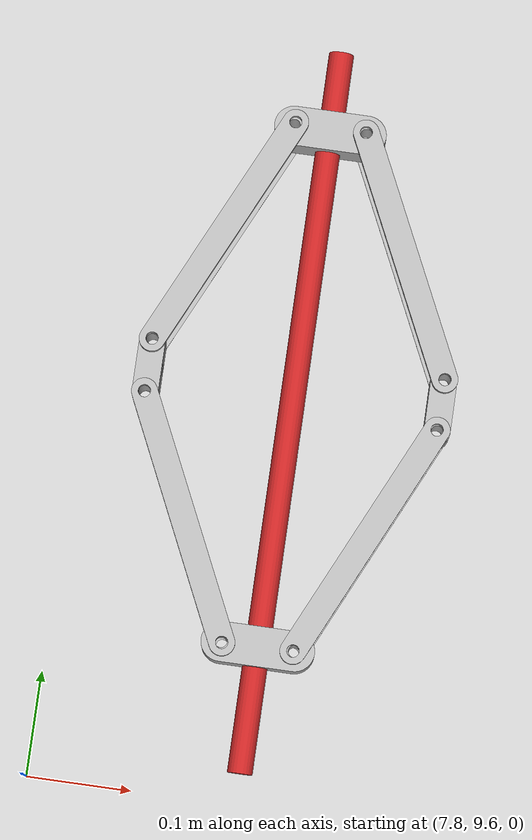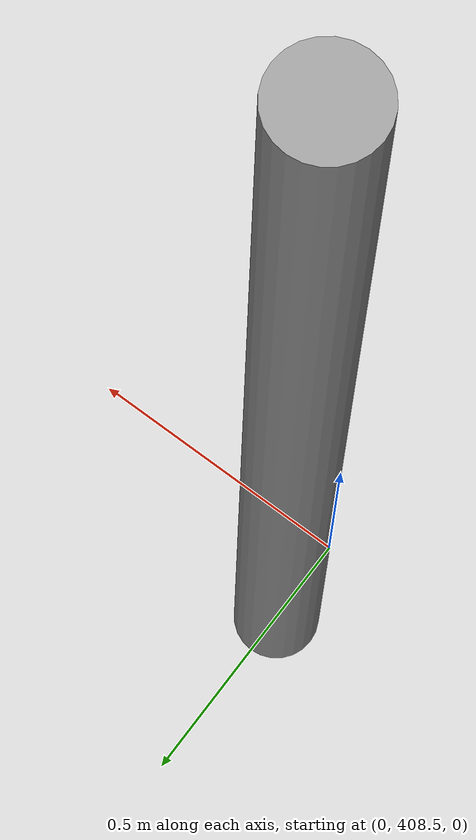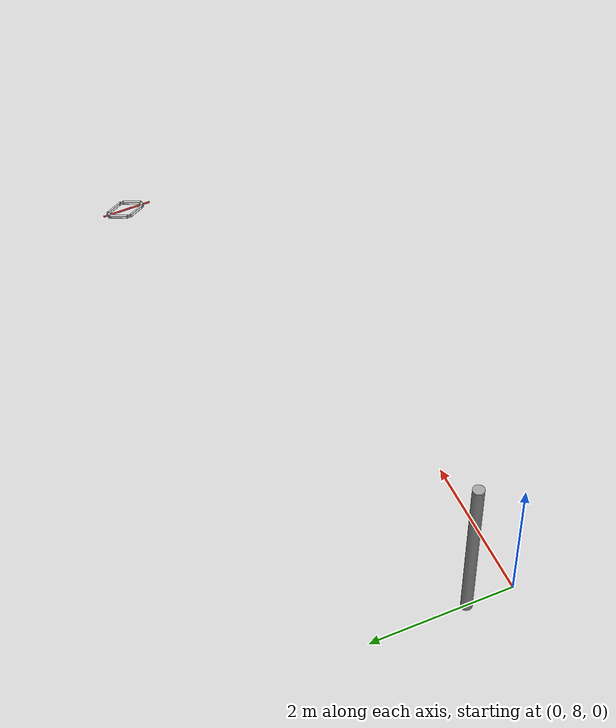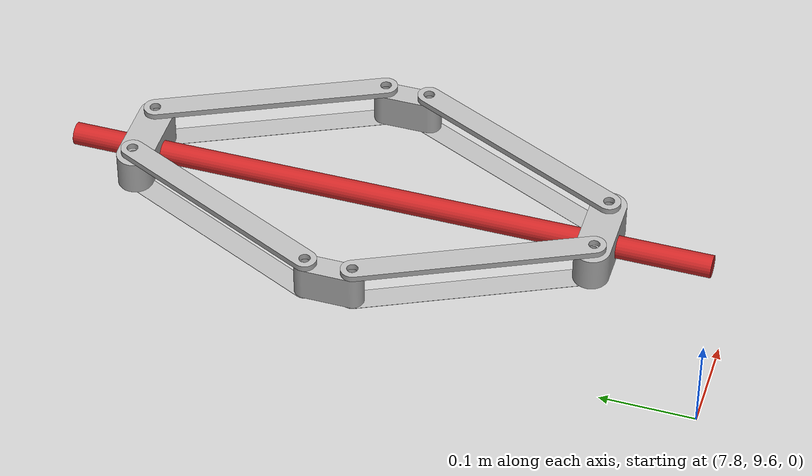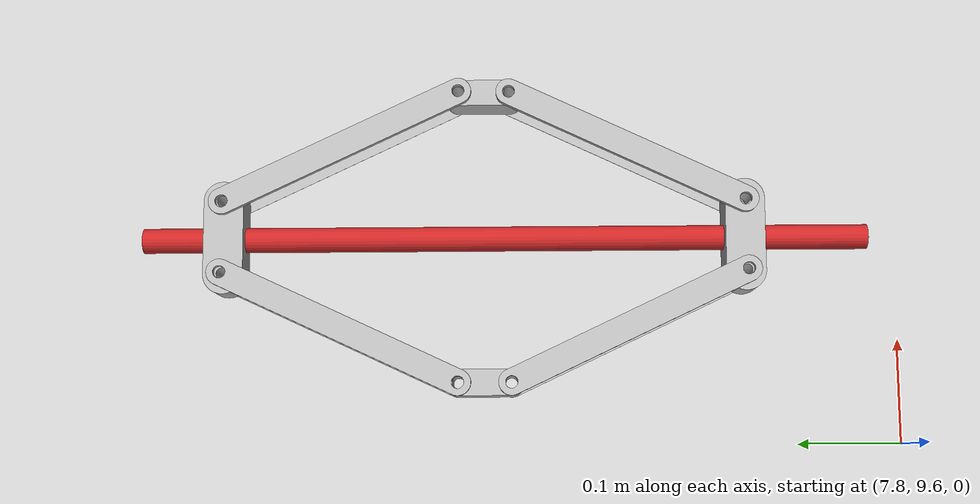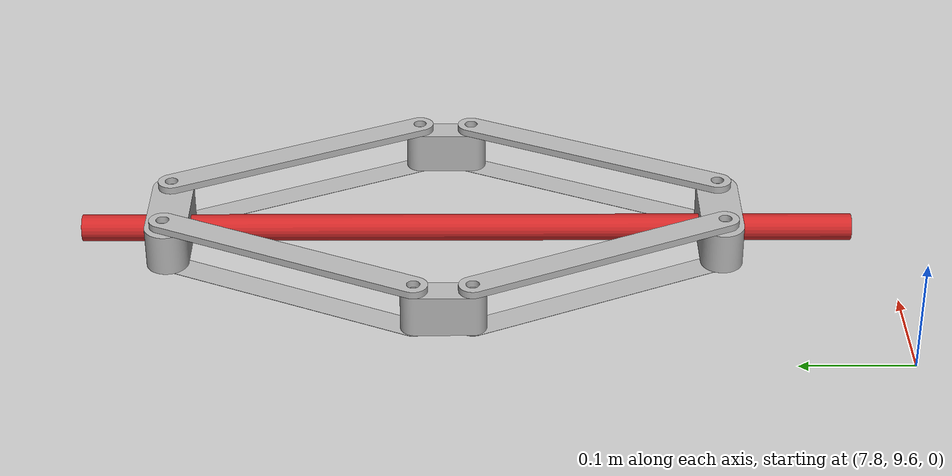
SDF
<sdf version="1.6">
 <world name="static_comm_block">
  <plugin name="ros_interface_plugin" filename="librotors_gazebo_ros_interface_plugin.so"/>
  <gravity>0 0 -9.8</gravity>
  <magnetic_field>6e-06 2.3e-05 -4.2e-05</magnetic_field>
  <atmosphere type="adiabatic"/>
  <physics type="ode">
   <max_step_size>0.001</max_step_size>
   <real_time_factor>1</real_time_factor>
   <real_time_update_rate>1000</real_time_update_rate>
  </physics>
  <scene><ambient>0.4 0.4 0.4 1</ambient><background>0.7 0.7 0.7 1</background><shadows>1</shadows></scene>
  <spherical_coordinates>
   <surface_model>EARTH_WGS84</surface_model>
   <latitude_deg>0</latitude_deg>
   <longitude_deg>0</longitude_deg>
   <elevation>0</elevation>
   <heading_deg>0</heading_deg>
  </spherical_coordinates>
  <include><uri>model://ground_plane</uri></include>
  <include><uri>model://pylon</uri><name>pylon_near</name><pose>0 8.66 1.2192 0 -0 0</pose></include>
  <include><uri>model://pylon</uri><name>pylon_far</name><pose>0 408.66 1.2192 0 -0 0</pose></include>
  <include><uri>model://gripper</uri><pose>8 10 0 0 -0 0</pose></include>
  <light name="sun" type="directional">
   <pose>0 0 10 0 0 0</pose>
   <diffuse>0.8 0.8 0.8 1</diffuse>
   <specular>0.2 0.2 0.2 1</specular>
   <direction>0.4864 0.3039 -0.819</direction>
   <attenuation>
    <range>1000</range>
    <constant>0.9</constant>
    <linear>0.01</linear>
    <quadratic>0.001</quadratic>
   </attenuation>
   <spot><inner_angle>0</inner_angle><outer_angle>0</outer_angle><falloff>0</falloff></spot>
  </light>
  <plugin name="ros_link_attacher_plugin" filename="libgazebo_ros_link_attacher.so">
   <model1>small box</model1>
   <link1>link</link1>
   <model2>communications_module</model2>
   <link2>link</link2>
   <model_e>gripper</model_e>
  </plugin>
  <light name="user_spot_light_0" type="spot">
   <pose>4.5 3 3 5 -0 0</pose>
   <diffuse>0.5 0.5 0.5 1</diffuse>
   <specular>0.1 0.1 0.1 1</specular>
   <direction>0 0 -1</direction>
   <attenuation>
    <range>20</range>
    <constant>0.5</constant>
    <linear>0.01</linear>
    <quadratic>0.001</quadratic>
   </attenuation>
   <cast_shadows>0</cast_shadows>
   <spot><inner_angle>0.6</inner_angle><outer_angle>1</outer_angle><falloff>1</falloff></spot>
  </light>
 </world>
</sdf>

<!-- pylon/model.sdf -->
<sdf version='1.6'>
  <model name='pylon'>
    <static>true</static>
    <link name='link'>
      <inertial>
        <mass>1</mass>
        <inertia>
          <ixx>0.145833</ixx>
          <ixy>0</ixy>
          <ixz>0</ixz>
          <iyy>0.145833</iyy>
          <iyz>0</iyz>
          <izz>0.125</izz>
        </inertia>
        <pose>0 0 0 0 -0 0</pose>
      </inertial>
      <self_collide>0</self_collide>
      <enable_wind>0</enable_wind>
      <kinematic>0</kinematic>
      <pose>0 0 0 0 -0 0</pose>
      <visual name='visual'>
        <geometry>
          <cylinder>
            <radius>0.076</radius>
            <length>2.438</length>
          </cylinder>
        </geometry>
        <material>
          <script>
            <name>Gazebo/Grey</name>
            <uri>file://media/materials/scripts/gazebo.material</uri>
          </script>
          <shader type='pixel'/>
        </material>
        <pose>0 0 0 0 -0 0</pose>
        <transparency>0</transparency>
        <cast_shadows>1</cast_shadows>
      </visual>
      <collision name='collision'>
        <laser_retro>0</laser_retro>
        <max_contacts>10</max_contacts>
        <pose>0 0 0 0 -0 0</pose>
        <geometry>
          <cylinder>
            <radius>0.762</radius>
            <length>2.438</length>
          </cylinder>
        </geometry>
        <surface>
          <friction>
            <ode>
              <mu>1</mu>
              <mu2>1</mu2>
              <fdir1>0 0 0</fdir1>
              <slip1>0</slip1>
              <slip2>0</slip2>
            </ode>
            <torsional>
              <coefficient>1</coefficient>
              <patch_radius>0</patch_radius>
              <surface_radius>0</surface_radius>
              <use_patch_radius>1</use_patch_radius>
              <ode>
                <slip>0</slip>
              </ode>
            </torsional>
          </friction>
          <bounce>
            <restitution_coefficient>0</restitution_coefficient>
            <threshold>1e+06</threshold>
          </bounce>
          <contact>
            <collide_without_contact>0</collide_without_contact>
            <collide_without_contact_bitmask>1</collide_without_contact_bitmask>
            <collide_bitmask>1</collide_bitmask>
            <ode>
              <soft_cfm>0</soft_cfm>
              <soft_erp>0.2</soft_erp>
              <kp>1e+13</kp>
              <kd>1</kd>
              <max_vel>0.01</max_vel>
              <min_depth>0</min_depth>
            </ode>
            <bullet>
              <split_impulse>1</split_impulse>
              <split_impulse_penetration_threshold>-0.01</split_impulse_penetration_threshold>
              <soft_cfm>0</soft_cfm>
              <soft_erp>0.2</soft_erp>
              <kp>1e+13</kp>
              <kd>1</kd>
            </bullet>
          </contact>
        </surface>
      </collision>
    </link>
    <static>1</static>
    <allow_auto_disable>1</allow_auto_disable>
  </model>
</sdf>

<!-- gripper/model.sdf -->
<sdf version="1.6">
  <model name='gripper'>
    <static>False</static>
    <link name='left_long_joint'>
      <pose>0 0.25 0.019 -1.57 0 0</pose>
      <inertial>
        <pose>-0.000104 -0.000077 -0.0 0 0 0</pose>
        <mass>0.3186</mass>
        <inertia>
          <ixx>7.938e-05</ixx>
          <ixy>0</ixy>
          <ixz>0</ixz>
          <iyy>3.3715e-04</iyy>
          <iyz>0</iyz>
          <izz>3.3664e-04</izz>
        </inertia>
      </inertial>
      <collision name="collision">
        <geometry>
          <mesh>
            <uri>model://gripper/meshes/joint_long.dae</uri>
            <scale>1 1 1</scale>
          </mesh>
        </geometry>
        <surface>
          <contact>
            <collide_bitmask>0xffff</collide_bitmask>
          </contact>
          <friction>
            <ode>
              <mu>100</mu>
              <mu2>50</mu2>
            </ode>
          </friction>
        </surface>
      </collision>
      <visual name='visual'>
        <geometry>
          <mesh>
            <uri>model://gripper/meshes/joint_long.dae</uri>
            <scale>1 1 1</scale>
          </mesh>
        </geometry>
      </visual>
    </link>
    <link name='right_long_joint'>
      <pose>0 -0.25 0.019 -1.57 0 0</pose>
      <collision name="collision">
        <geometry>
          <mesh>
            <uri>model://gripper/meshes/joint_long.dae</uri>
            <scale>1 1 1</scale>
          </mesh>
        </geometry>
        <surface>
          <contact>
            <collide_bitmask>0xffff</collide_bitmask>
          </contact>
          <friction>
            <ode>
              <mu>100</mu>
              <mu2>50</mu2>
            </ode>
          </friction>
        </surface>
      </collision>
      <visual name='visual'>
        <geometry>
          <mesh>
            <uri>model://gripper/meshes/joint_long.dae</uri>
            <scale>1 1 1</scale>
          </mesh>
        </geometry>
      </visual>
      <inertial>
        <pose>-0.000104 -0.000077 -0.0 0 0 0</pose>
        <mass>0.3186</mass>
        <inertia>
          <ixx>7.938e-05</ixx>
          <ixy>0</ixy>
          <ixz>0</ixz>
          <iyy>3.3715e-04</iyy>
          <iyz>0</iyz>
          <izz>3.3664e-04</izz>
        </inertia>
      </inertial>
    </link>
    <link name='left_short_joint'>
      <pose>0.14 0 0 1.57 0 1.57</pose>
      <collision name="collision">
        <geometry>
          <mesh>
            <uri>model://gripper/meshes/joint_short.dae</uri>
            <scale>1 1 1</scale>
          </mesh>
        </geometry>
        <surface>
          <contact>
            <collide_bitmask>0xffff</collide_bitmask>
          </contact>
          <friction>
            <ode>
              <mu>100</mu>
              <mu2>50</mu2>
            </ode>
          </friction>
        </surface>
      </collision>
      <visual name='visual'>
        <geometry>
          <mesh>
            <uri>model://gripper/meshes/joint_short.dae</uri>
            <scale>1 1 1</scale>
          </mesh>
        </geometry>
      </visual>
      <inertial>
        <pose>0.0 0.01896 -0.000157 0 0 0</pose>
        <mass>0.1512</mass>
        <inertia>
          <ixx>2.689e-05</ixx>
          <ixy>-0</ixy>
          <ixz>-0</ixz>
          <iyy>6.696e-05</iyy>
          <iyz>0</iyz>
          <izz>7.741e-05</izz>
        </inertia>
      </inertial>
    </link>
    <link name='right_short_joint'>
      <pose>-0.14 0 0 1.57 0 1.57</pose>
      <collision name="collision">
        <geometry>
          <mesh>
            <uri>model://gripper/meshes/joint_short.dae</uri>
            <scale>1 1 1</scale>
          </mesh>
        </geometry>
        <surface>
          <contact>
            <collide_bitmask>0xffff</collide_bitmask>
          </contact>
          <friction>
            <ode>
              <mu>100</mu>
              <mu2>50</mu2>
            </ode>
          </friction>
        </surface>
      </collision>
      <visual name='visual'>
        <geometry>
          <mesh>
            <uri>model://gripper/meshes/joint_short.dae</uri>
            <scale>1 1 1</scale>
          </mesh>
        </geometry>
      </visual>
      <inertial>
        <pose>0.0 0.01896 -0.000157 0 0 0</pose>
        <mass>0.1512</mass>
        <inertia>
          <ixx>2.689e-05</ixx>
          <ixy>-0</ixy>
          <ixz>-0</ixz>
          <iyy>6.696e-05</iyy>
          <iyz>0</iyz>
          <izz>7.741e-05</izz>
        </inertia>
      </inertial>
    </link>
    <link name='flat_plate1'>
      <pose>0.0456 0.2565 0.038 1.57 0 -1.132</pose>
      <collision name="collision">
        <geometry>
          <mesh>
            <uri>model://gripper/meshes/flat_plate.dae</uri>
            <scale>1 1 1</scale>
          </mesh>
        </geometry>
        <surface>
          <contact>
            <collide_bitmask>0xffff</collide_bitmask>
          </contact>
          <friction>
            <ode>
              <mu>100</mu>
              <mu2>50</mu2>
            </ode>
          </friction>
        </surface>
      </collision>
      <visual name='visual'>
        <geometry>
          <mesh>
            <uri>model://gripper/meshes/flat_plate.dae</uri>
            <scale>1 1 1</scale>
          </mesh>
        </geometry>
      </visual>
      <inertial>
        <pose>0.125 0.00325 0.012500 0 0 0</pose>
        <mass>0.0651</mass>
        <inertia>
          <ixx>3.689e-06</ixx>
          <ixy>-0</ixy>
          <ixz>-0</ixz>
          <iyy>3.797e-04</iyy>
          <iyz>0</iyz>
          <izz>3.764e-04</izz>
        </inertia>
      </inertial>
    </link>
    <link name='flat_plate2'>
      <pose>-0.1289 -0.02 0.038 1.57 0 -1.132</pose>
      <collision name="collision">
        <geometry>
          <mesh>
            <uri>model://gripper/meshes/flat_plate.dae</uri>
            <scale>1 1 1</scale>
          </mesh>
        </geometry>
        <surface>
          <contact>
            <collide_bitmask>0xffff</collide_bitmask>
          </contact>
          <friction>
            <ode>
              <mu>100</mu>
              <mu2>50</mu2>
            </ode>
          </friction>
        </surface>
      </collision>
      <visual name='visual'>
        <geometry>
          <mesh>
            <uri>model://gripper/meshes/flat_plate.dae</uri>
            <scale>1 1 1</scale>
          </mesh>
        </geometry>
      </visual>
      <inertial>
        <pose>0.125 0.00325 0.012500 0 0 0</pose>
        <mass>0.0651</mass>
        <inertia>
          <ixx>3.689e-06</ixx>
          <ixy>-0</ixy>
          <ixz>-0</ixz>
          <iyy>3.797e-04</iyy>
          <iyz>0</iyz>
          <izz>3.764e-04</izz>
        </inertia>
      </inertial>
    </link>
    <link name='flat_plate3'>
      <pose>-0.1515 0.031 0.038 1.57 0 1.132</pose>
      <collision name="collision">
        <geometry>
          <mesh>
            <uri>model://gripper/meshes/flat_plate.dae</uri>
            <scale>1 1 1</scale>
          </mesh>
        </geometry>
        <surface>
          <contact>
            <collide_bitmask>0xffff</collide_bitmask>
          </contact>
          <friction>
            <ode>
              <mu>100</mu>
              <mu2>50</mu2>
            </ode>
          </friction>
        </surface>
      </collision>
      <visual name='visual'>
        <geometry>
          <mesh>
            <uri>model://gripper/meshes/flat_plate.dae</uri>
            <scale>1 1 1</scale>
          </mesh>
        </geometry>
      </visual>
      <inertial>
        <pose>0.125 0.00325 0.012500 0 0 0</pose>
        <mass>0.0651</mass>
        <inertia>
          <ixx>3.689e-06</ixx>
          <ixy>-0</ixy>
          <ixz>-0</ixz>
          <iyy>3.797e-04</iyy>
          <iyz>0</iyz>
          <izz>3.764e-04</izz>
        </inertia>
      </inertial>
    </link>
    <link name='flat_plate4'>
      <pose>0.022 -0.245 0.038 1.57 0 1.132</pose>
      <collision name="collision">
        <geometry>
          <mesh>
            <uri>model://gripper/meshes/flat_plate.dae</uri>
            <scale>1 1 1</scale>
          </mesh>
        </geometry>
        <surface>
          <contact>
            <collide_bitmask>0xffff</collide_bitmask>
          </contact>
          <friction>
            <ode>
              <mu>100</mu>
              <mu2>50</mu2>
            </ode>
          </friction>
        </surface>
      </collision>
      <visual name='visual'>
        <geometry>
          <mesh>
            <uri>model://gripper/meshes/flat_plate.dae</uri>
            <scale>1 1 1</scale>
          </mesh>
        </geometry>
      </visual>
      <inertial>
        <pose>0.125 0.00325 0.012500 0 0 0</pose>
        <mass>0.0651</mass>
        <inertia>
          <ixx>3.689e-06</ixx>
          <ixy>-0</ixy>
          <ixz>-0</ixz>
          <iyy>3.797e-04</iyy>
          <iyz>0</iyz>
          <izz>3.764e-04</izz>
        </inertia>
      </inertial>
    </link>

    <link name='flat_plate5'>
      <pose>0.0456 0.2565 -0.007 1.57 0 -1.132</pose>
      <collision name="collision">
        <geometry>
          <mesh>
            <uri>model://gripper/meshes/flat_plate.dae</uri>
            <scale>1 1 1</scale>
          </mesh>
        </geometry>
        <surface>
          <contact>
            <collide_bitmask>0xffff</collide_bitmask>
          </contact>
          <friction>
            <ode>
              <mu>100</mu>
              <mu2>50</mu2>
            </ode>
          </friction>
        </surface>
      </collision>
      <visual name='visual'>
        <geometry>
          <mesh>
            <uri>model://gripper/meshes/flat_plate.dae</uri>
            <scale>1 1 1</scale>
          </mesh>
        </geometry>
      </visual>
      <inertial>
        <pose>0.125 0.00325 0.012500 0 0 0</pose>
        <mass>0.0651</mass>
        <inertia>
          <ixx>3.689e-06</ixx>
          <ixy>-0</ixy>
          <ixz>-0</ixz>
          <iyy>3.797e-04</iyy>
          <iyz>0</iyz>
          <izz>3.764e-04</izz>
        </inertia>
      </inertial>
    </link>
    <link name='flat_plate6'>
      <pose>-0.1289 -0.02 -0.007 1.57 0 -1.132</pose>
      <collision name="collision">
        <geometry>
          <mesh>
            <uri>model://gripper/meshes/flat_plate.dae</uri>
            <scale>1 1 1</scale>
          </mesh>
        </geometry>
        <surface>
          <contact>
            <collide_bitmask>0xffff</collide_bitmask>
          </contact>
          <friction>
            <ode>
              <mu>100</mu>
              <mu2>50</mu2>
            </ode>
          </friction>
        </surface>
      </collision>
      <visual name='visual'>
        <geometry>
          <mesh>
            <uri>model://gripper/meshes/flat_plate.dae</uri>
            <scale>1 1 1</scale>
          </mesh>
        </geometry>
      </visual>
      <inertial>
        <pose>0.125 0.00325 0.012500 0 0 0</pose>
        <mass>0.0651</mass>
        <inertia>
          <ixx>3.689e-06</ixx>
          <ixy>-0</ixy>
          <ixz>-0</ixz>
          <iyy>3.797e-04</iyy>
          <iyz>0</iyz>
          <izz>3.764e-04</izz>
        </inertia>
      </inertial>
    </link>
    <link name='flat_plate7'>
      <pose>-0.1515 0.031 -0.007 1.57 0 1.132</pose>
      <collision name="collision">
        <geometry>
          <mesh>
            <uri>model://gripper/meshes/flat_plate.dae</uri>
            <scale>1 1 1</scale>
          </mesh>
        </geometry>
        <surface>
          <contact>
            <collide_bitmask>0xffff</collide_bitmask>
          </contact>
          <friction>
            <ode>
              <mu>100</mu>
              <mu2>50</mu2>
            </ode>
          </friction>
        </surface>
      </collision>
      <visual name='visual'>
        <geometry>
          <mesh>
            <uri>model://gripper/meshes/flat_plate.dae</uri>
            <scale>1 1 1</scale>
          </mesh>
        </geometry>
      </visual>
      <inertial>
        <pose>0.125 0.00325 0.012500 0 0 0</pose>
        <mass>0.0651</mass>
        <inertia>
          <ixx>3.689e-06</ixx>
          <ixy>-0</ixy>
          <ixz>-0</ixz>
          <iyy>3.797e-04</iyy>
          <iyz>0</iyz>
          <izz>3.764e-04</izz>
        </inertia>
      </inertial>
    </link>
    <link name='flat_plate8'>
      <pose>0.022 -0.245 -0.007 1.57 0 1.132</pose>
      <collision name="collision">
        <geometry>
          <mesh>
            <uri>model://gripper/meshes/flat_plate.dae</uri>
            <scale>1 1 1</scale>
          </mesh>
        </geometry>
        <surface>
          <contact>
            <collide_bitmask>0xffff</collide_bitmask>
          </contact>
          <friction>
            <ode>
              <mu>100</mu>
              <mu2>50</mu2>
            </ode>
          </friction>
        </surface>
      </collision>
      <visual name='visual'>
        <geometry>
          <mesh>
            <uri>model://gripper/meshes/flat_plate.dae</uri>
            <scale>1 1 1</scale>
          </mesh>
        </geometry>
      </visual>
      <inertial>
        <pose>0.125 0.00325 0.012500 0 0 0</pose>
        <mass>0.0651</mass>
        <inertia>
          <ixx>3.689e-06</ixx>
          <ixy>-0</ixy>
          <ixz>-0</ixz>
          <iyy>3.797e-04</iyy>
          <iyz>0</iyz>
          <izz>3.764e-04</izz>
        </inertia>
      </inertial>
    </link>

    <link name='screw_rod'>
      <pose>-0.00015 -0.02 0.0153 0 1.57 1.57 </pose>
      <collision name="collision">
        <geometry>
          <cylinder>
            <radius>0.012</radius>
            <length>1</length>
          </cylinder>
        </geometry>
      </collision>
      <visual name="visual">
        <material>
          <script>
            <name>Gazebo/Red</name>
            <uri>file://media/materials/scripts/gazebo.material</uri>
          </script>
          <shader type='pixel'/>
        </material>
        <geometry>
          <cylinder>
            <radius>0.012</radius>
            <length>0.7</length>
          </cylinder>
        </geometry>
      </visual>
      <inertial>
        <pose>0 0 0.32263 0 1.57 0</pose>
        <mass>1.29</mass>
        <inertia>
          <ixx>1.8357e-04</ixx>
          <ixy>-0</ixy>
          <ixz>-0</ixz>
          <iyy>8.006e-02</iyy>
          <iyz>0</iyz>
          <izz>8.006e-02</izz>
        </inertia>
      </inertial>
    </link>

    <joint name="j1" type="revolute">
      <pose> 0.25 0 0.01 0 0 0</pose>
      <child>flat_plate1</child>
      <parent>left_short_joint</parent>
      <axis>
        <limit>
          <lower>-0.5</lower>
          <upper>0.1</upper>
        </limit>
        <xyz>0 1 0</xyz>
      </axis>
    </joint>
    <joint name="j2" type="revolute">
      <pose> 0 0 0.01 0 0 0</pose>
      <child>flat_plate1</child>
      <parent>left_long_joint</parent>
      <axis>
        <limit>
          <lower>-0.5</lower>
          <upper>0.1</upper>
        </limit>
        <xyz>0 1 0</xyz>
      </axis>
    </joint>
    <joint name="j3" type="revolute">
      <pose> 0 0 0.01 0 0 0</pose>
      <child>flat_plate2</child>
      <parent>right_short_joint</parent>
      <axis>
        <limit>
          <lower>-0.5</lower>
          <upper>0.1</upper>
        </limit>
        <xyz>0 1 0</xyz>
      </axis>
    </joint>
    <joint name="j4" type="revolute">
      <pose> 0.25 0 0.01 0 0 0</pose>
      <child>flat_plate2</child>
      <parent>right_long_joint</parent>
      <axis>
        <limit>
          <lower>-0.5</lower>
          <upper>0.1</upper>
        </limit>
        <xyz>0 1 0</xyz>
      </axis>
    </joint>
    <joint name="j5" type="revolute">
      <pose> 0 0 0.01 0 0 0</pose>
      <child>flat_plate3</child>
      <parent>right_short_joint</parent>
      <axis>
        <limit>
          <lower>-0.5</lower>
          <upper>0.1</upper>
        </limit>
        <xyz>0 1 0</xyz>
      </axis>
    </joint>
    <joint name="j6" type="revolute">
      <pose> 0.25 0 0.01 0 0 0</pose>
      <child>flat_plate3</child>
      <parent>left_long_joint</parent>
      <axis>
        <limit>
          <lower>-0.5</lower>
          <upper>0.1</upper>
        </limit>
        <xyz>0 1 0</xyz>
      </axis>
    </joint>
    <joint name="j7" type="revolute">
      <pose> 0.25 0 0.01 0 0 0</pose>
      <child>flat_plate4</child>
      <parent>left_short_joint</parent>
      <axis>
        <limit>
          <lower>-0.5</lower>
          <upper>0.1</upper>
        </limit>
        <xyz>0 1 0</xyz>
      </axis>
    </joint>
    <joint name="j8" type="revolute">
      <pose> 0 0 0.01 0 0 0</pose>
      <child>flat_plate4</child>
      <parent>right_long_joint</parent>
      <axis>
        <limit>
          <lower>-0.5</lower>
          <upper>0.1</upper>
        </limit>
        <xyz>0 1 0</xyz>
      </axis>
    </joint>

    <joint name="j9" type="revolute">
      <pose> 0.25 0 0.01 0 0 0</pose>
      <child>flat_plate5</child>
      <parent>left_short_joint</parent>
      <axis>
        <limit>
          <lower>-0.5</lower>
          <upper>0.1</upper>
        </limit>
        <xyz>0 -1 0</xyz>
      </axis>
    </joint>
    <joint name="j10" type="revolute">
      <pose> 0 0 0.01 0 0 0</pose>
      <child>flat_plate5</child>
      <parent>left_long_joint</parent>
      <axis>
        <limit>
          <lower>-0.5</lower>
          <upper>0.1</upper>
        </limit>
        <xyz>0 -1 0</xyz>
      </axis>
    </joint>
    <joint name="j11" type="revolute">
      <pose> 0 0 0.01 0 0 0</pose>
      <child>flat_plate6</child>
      <parent>right_short_joint</parent>
      <axis>
        <limit>
          <lower>-0.5</lower>
          <upper>0.1</upper>
        </limit>
        <xyz>0 -1 0</xyz>
      </axis>
    </joint>
    <joint name="j12" type="revolute">
      <pose> 0.25 0 0.01 0 0 0</pose>
      <child>flat_plate6</child>
      <parent>right_long_joint</parent>
      <axis>
        <limit>
          <lower>-0.5</lower>
          <upper>0.1</upper>
        </limit>
        <xyz>0 -1 0</xyz>
      </axis>
    </joint>
    <joint name="j13" type="revolute">
      <pose> 0 0 0.01 0 0 0</pose>
      <child>flat_plate7</child>
      <parent>right_short_joint</parent>
      <axis>
        <limit>
          <lower>-0.5</lower>
          <upper>0.1</upper>
        </limit>
        <xyz>0 -1 0</xyz>
      </axis>
    </joint>
    <joint name="j14" type="revolute">
      <pose> 0.25 0 0.01 0 0 0</pose>
      <child>flat_plate7</child>
      <parent>left_long_joint</parent>
      <axis>
        <limit>
          <lower>-0.5</lower>
          <upper>0.1</upper>
        </limit>
        <xyz>0 -1 0</xyz>
      </axis>
    </joint>
    <joint name="j15" type="revolute">
      <pose> 0.25 0 0.01 0 0 0</pose>
      <child>flat_plate8</child>
      <parent>left_short_joint</parent>
      <axis>
        <limit>
          <lower>-0.5</lower>
          <upper>0.1</upper>
        </limit>
        <xyz>0 -1 0</xyz>
      </axis>
    </joint>
    <joint name="j16" type="revolute">
      <pose> 0 0 0.01 0 0 0</pose>
      <child>flat_plate8</child>
      <parent>right_long_joint</parent>
      <axis>
        <limit>
          <lower>-0.5</lower>
          <upper>0.1</upper>
        </limit>
        <xyz>0 -1 0</xyz>
      </axis>
    </joint>
    <joint name="piston_joint_1" type ="screw">
      <pose>0 0.004 0 0 0 0</pose>
      <parent>screw_rod</parent>
      <child>right_long_joint</child>
      <axis>
        <xyz>0 1 0</xyz>
      </axis>
      <thread_pitch>100</thread_pitch>
    </joint>

    <joint name="piston_joint_2" type ="screw">
      <pose>0 0.004 0 0 0 0</pose>
      <parent>screw_rod</parent>
      <child>left_long_joint</child>
      <axis>
        <xyz>0 1 0</xyz>
      </axis>
      <thread_pitch>-100</thread_pitch>
    </joint>

    <plugin name="gripper_plugin" filename="libiarc_gripper_plugin.so">
      <namespace>firefly</namespace>
      <link_name>screw_rod</link_name>
      <torque_magnitude>1.5</torque_magnitude>
    </plugin>
  </model>
</sdf>
